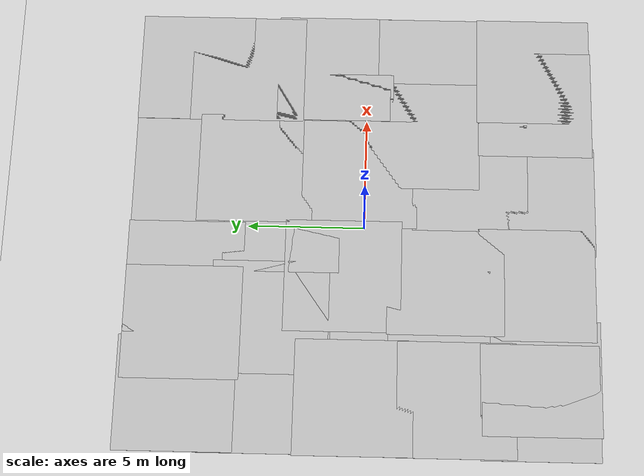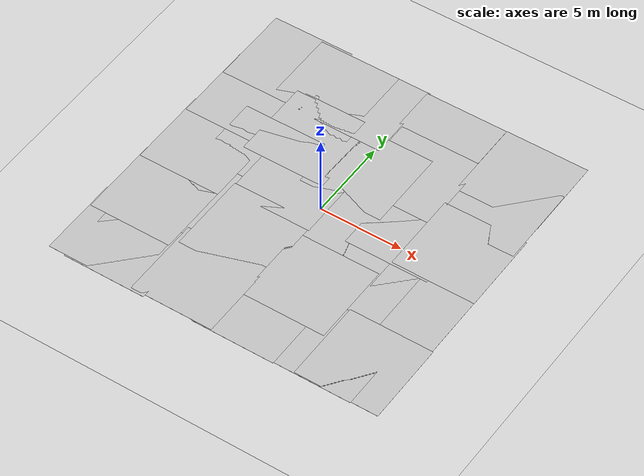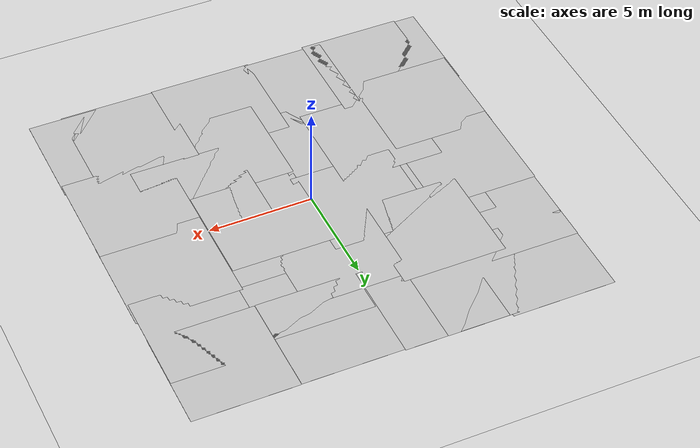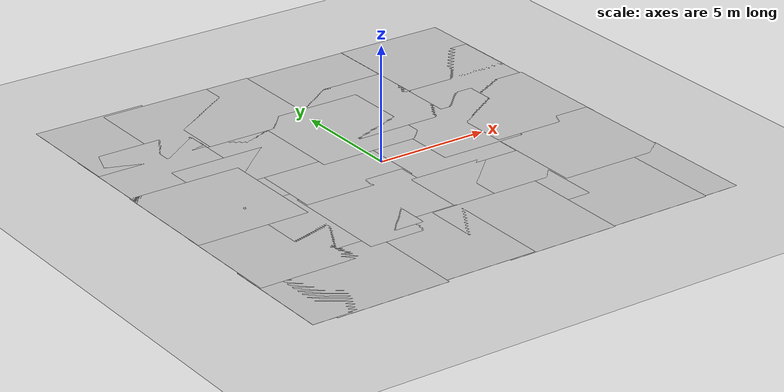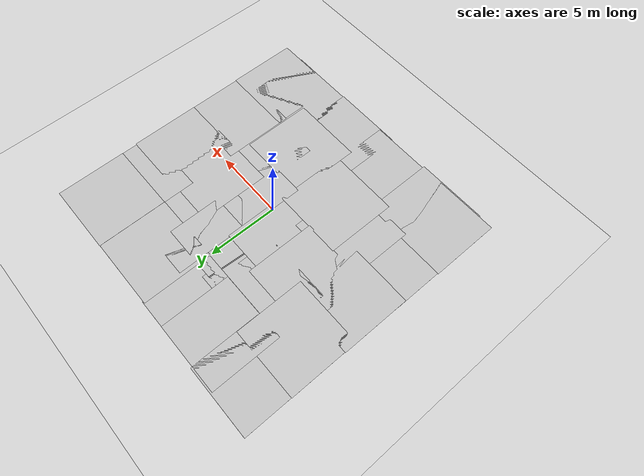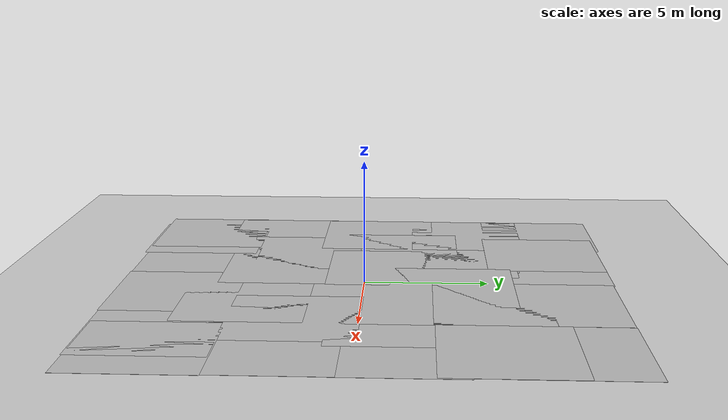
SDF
<sdf version="1.7">
 <world name="default">
  <light name="sun" type="directional">
   <pose>0 0 10 0 -0 0</pose>
   <diffuse>0.8 0.8 0.8 1</diffuse>
   <specular>0.2 0.2 0.2 1</specular>
   <attenuation>
    <range>1000</range>
    <constant>0.9</constant>
    <linear>0.01</linear>
    <quadratic>0.001</quadratic>
   </attenuation>
   <direction>-0.5 0.1 -0.9</direction>
   <spot><inner_angle>0</inner_angle><outer_angle>0</outer_angle><falloff>0</falloff></spot>
  </light>
  <model name="ground_plane">
   <static>1</static>
   <link name="link">
    <collision name="collision">
     <geometry><plane><normal>0 0 1</normal><size>100 100</size></plane></geometry>
     <surface>
      <contact><collide_bitmask>65535</collide_bitmask></contact>
      <friction><ode><mu>100</mu><mu2>50</mu2></ode></friction>
     </surface>
    </collision>
    <visual name="visual">
     <cast_shadows>0</cast_shadows>
     <geometry><plane><normal>0 0 1</normal><size>100 100</size></plane></geometry>
     <material>
      <script><uri>file://media/materials/scripts/gazebo.material</uri><name>Gazebo/Grey</name></script>
     </material>
    </visual>
   </link>
  </model>
  <gravity>0 0 -9.8</gravity>
  <magnetic_field>6e-06 2.3e-05 -4.2e-05</magnetic_field>
  <atmosphere type="adiabatic"/>
  <physics type="ode">
   <max_step_size>0.001</max_step_size>
   <real_time_factor>1</real_time_factor>
   <real_time_update_rate>1000</real_time_update_rate>
  </physics>
  <scene><ambient>0.4 0.4 0.4 1</ambient><background>0.7 0.7 0.7 1</background><shadows>1</shadows></scene>
  <spherical_coordinates>
   <surface_model>EARTH_WGS84</surface_model>
   <latitude_deg>0</latitude_deg>
   <longitude_deg>0</longitude_deg>
   <elevation>0</elevation>
   <heading_deg>0</heading_deg>
  </spherical_coordinates>
  <model name="my_ground_plane">
   <static>1</static>
   <link name="link">
    <collision name="collision">
     <geometry><plane><normal>0 0 1</normal><size>5 5</size></plane></geometry>
     <surface><friction><ode><mu>100</mu><mu2>50</mu2></ode></friction></surface>
    </collision>
    <visual name="visual">
     <cast_shadows>0</cast_shadows>
     <geometry><plane><normal>0 0 1</normal><size>5 5</size></plane></geometry>
     <material>
      <script>
       <uri>model://my_ground_plane/materials/scripts</uri>
       <uri>model://my_ground_plane/materials/textures/</uri>
       <name>MyGroundPlane/Image</name>
      </script>
     </material>
    </visual>
   </link>
   <pose>-2.1472 0.891418 0 0 -0 0</pose>
  </model>
  <model name="my_ground_plane_0">
   <static>1</static>
   <link name="link">
    <collision name="collision">
     <geometry><plane><normal>0 0 1</normal><size>5 5</size></plane></geometry>
     <surface><friction><ode><mu>100</mu><mu2>50</mu2></ode></friction></surface>
    </collision>
    <visual name="visual">
     <cast_shadows>0</cast_shadows>
     <geometry><plane><normal>0 0 1</normal><size>5 5</size></plane></geometry>
     <material>
      <script>
       <uri>model://my_ground_plane/materials/scripts</uri>
       <uri>model://my_ground_plane/materials/textures/</uri>
       <name>MyGroundPlane/Image</name>
      </script>
     </material>
    </visual>
   </link>
   <pose>2.54168 0.257078 0 0 -0 0</pose>
  </model>
  <model name="my_ground_plane_1">
   <static>1</static>
   <link name="link">
    <collision name="collision">
     <geometry><plane><normal>0 0 1</normal><size>5 5</size></plane></geometry>
     <surface><friction><ode><mu>100</mu><mu2>50</mu2></ode></friction></surface>
    </collision>
    <visual name="visual">
     <cast_shadows>0</cast_shadows>
     <geometry><plane><normal>0 0 1</normal><size>5 5</size></plane></geometry>
     <material>
      <script>
       <uri>model://my_ground_plane/materials/scripts</uri>
       <uri>model://my_ground_plane/materials/textures/</uri>
       <name>MyGroundPlane/Image</name>
      </script>
     </material>
    </visual>
   </link>
   <pose>-2.21829 -3.50663 0 0 -0 0</pose>
  </model>
  <model name="my_ground_plane_2">
   <static>1</static>
   <link name="link">
    <collision name="collision">
     <geometry><plane><normal>0 0 1</normal><size>5 5</size></plane></geometry>
     <surface><friction><ode><mu>100</mu><mu2>50</mu2></ode></friction></surface>
    </collision>
    <visual name="visual">
     <cast_shadows>0</cast_shadows>
     <geometry><plane><normal>0 0 1</normal><size>5 5</size></plane></geometry>
     <material>
      <script>
       <uri>model://my_ground_plane/materials/scripts</uri>
       <uri>model://my_ground_plane/materials/textures/</uri>
       <name>MyGroundPlane/Image</name>
      </script>
     </material>
    </visual>
   </link>
   <pose>2.48414 -4.54466 0 0 -0 0</pose>
  </model>
  <model name="my_ground_plane_3">
   <static>1</static>
   <link name="link">
    <collision name="collision">
     <geometry><plane><normal>0 0 1</normal><size>5 5</size></plane></geometry>
     <surface><friction><ode><mu>100</mu><mu2>50</mu2></ode></friction></surface>
    </collision>
    <visual name="visual">
     <cast_shadows>0</cast_shadows>
     <geometry><plane><normal>0 0 1</normal><size>5 5</size></plane></geometry>
     <material>
      <script>
       <uri>model://my_ground_plane/materials/scripts</uri>
       <uri>model://my_ground_plane/materials/textures/</uri>
       <name>MyGroundPlane/Image</name>
      </script>
     </material>
    </visual>
   </link>
   <pose>-2.4046 -7.39624 0 0 -0 0</pose>
  </model>
  <model name="my_ground_plane_4">
   <static>1</static>
   <link name="link">
    <collision name="collision">
     <geometry><plane><normal>0 0 1</normal><size>5 5</size></plane></geometry>
     <surface><friction><ode><mu>100</mu><mu2>50</mu2></ode></friction></surface>
    </collision>
    <visual name="visual">
     <cast_shadows>0</cast_shadows>
     <geometry><plane><normal>0 0 1</normal><size>5 5</size></plane></geometry>
     <material>
      <script>
       <uri>model://my_ground_plane/materials/scripts</uri>
       <uri>model://my_ground_plane/materials/textures/</uri>
       <name>MyGroundPlane/Image</name>
      </script>
     </material>
    </visual>
   </link>
   <pose>-6.5126 -7.54643 0 0 -0 0</pose>
  </model>
  <model name="my_ground_plane_5">
   <static>1</static>
   <link name="link">
    <collision name="collision">
     <geometry><plane><normal>0 0 1</normal><size>5 5</size></plane></geometry>
     <surface><friction><ode><mu>100</mu><mu2>50</mu2></ode></friction></surface>
    </collision>
    <visual name="visual">
     <cast_shadows>0</cast_shadows>
     <geometry><plane><normal>0 0 1</normal><size>5 5</size></plane></geometry>
     <material>
      <script>
       <uri>model://my_ground_plane/materials/scripts</uri>
       <uri>model://my_ground_plane/materials/textures/</uri>
       <name>MyGroundPlane/Image</name>
      </script>
     </material>
    </visual>
   </link>
   <pose>-7.54538 -7.47346 0 0 -0 0</pose>
  </model>
  <model name="my_ground_plane_6">
   <static>1</static>
   <link name="link">
    <collision name="collision">
     <geometry><plane><normal>0 0 1</normal><size>5 5</size></plane></geometry>
     <surface><friction><ode><mu>100</mu><mu2>50</mu2></ode></friction></surface>
    </collision>
    <visual name="visual">
     <cast_shadows>0</cast_shadows>
     <geometry><plane><normal>0 0 1</normal><size>5 5</size></plane></geometry>
     <material>
      <script>
       <uri>model://my_ground_plane/materials/scripts</uri>
       <uri>model://my_ground_plane/materials/textures/</uri>
       <name>MyGroundPlane/Image</name>
      </script>
     </material>
    </visual>
   </link>
   <pose>-7.49969 -3.98698 0 0 -0 0</pose>
  </model>
  <model name="my_ground_plane_7">
   <static>1</static>
   <link name="link">
    <collision name="collision">
     <geometry><plane><normal>0 0 1</normal><size>5 5</size></plane></geometry>
     <surface><friction><ode><mu>100</mu><mu2>50</mu2></ode></friction></surface>
    </collision>
    <visual name="visual">
     <cast_shadows>0</cast_shadows>
     <geometry><plane><normal>0 0 1</normal><size>5 5</size></plane></geometry>
     <material>
      <script>
       <uri>model://my_ground_plane/materials/scripts</uri>
       <uri>model://my_ground_plane/materials/textures/</uri>
       <name>MyGroundPlane/Image</name>
      </script>
     </material>
    </visual>
   </link>
   <pose>-7.48538 0.32335 0 0 -0 0</pose>
  </model>
  <model name="my_ground_plane_8">
   <static>1</static>
   <link name="link">
    <collision name="collision">
     <geometry><plane><normal>0 0 1</normal><size>5 5</size></plane></geometry>
     <surface><friction><ode><mu>100</mu><mu2>50</mu2></ode></friction></surface>
    </collision>
    <visual name="visual">
     <cast_shadows>0</cast_shadows>
     <geometry><plane><normal>0 0 1</normal><size>5 5</size></plane></geometry>
     <material>
      <script>
       <uri>model://my_ground_plane/materials/scripts</uri>
       <uri>model://my_ground_plane/materials/textures/</uri>
       <name>MyGroundPlane/Image</name>
      </script>
     </material>
    </visual>
   </link>
   <pose>-4.33085 -2.89604 0 0 -0 0</pose>
  </model>
  <model name="my_ground_plane_9">
   <static>1</static>
   <link name="link">
    <collision name="collision">
     <geometry><plane><normal>0 0 1</normal><size>5 5</size></plane></geometry>
     <surface><friction><ode><mu>100</mu><mu2>50</mu2></ode></friction></surface>
    </collision>
    <visual name="visual">
     <cast_shadows>0</cast_shadows>
     <geometry><plane><normal>0 0 1</normal><size>5 5</size></plane></geometry>
     <material>
      <script>
       <uri>model://my_ground_plane/materials/scripts</uri>
       <uri>model://my_ground_plane/materials/textures/</uri>
       <name>MyGroundPlane/Image</name>
      </script>
     </material>
    </visual>
   </link>
   <pose>-7.44478 4.40371 0 0 -0 0</pose>
  </model>
  <model name="my_ground_plane_10">
   <static>1</static>
   <link name="link">
    <collision name="collision">
     <geometry><plane><normal>0 0 1</normal><size>5 5</size></plane></geometry>
     <surface><friction><ode><mu>100</mu><mu2>50</mu2></ode></friction></surface>
    </collision>
    <visual name="visual">
     <cast_shadows>0</cast_shadows>
     <geometry><plane><normal>0 0 1</normal><size>5 5</size></plane></geometry>
     <material>
      <script>
       <uri>model://my_ground_plane/materials/scripts</uri>
       <uri>model://my_ground_plane/materials/textures/</uri>
       <name>MyGroundPlane/Image</name>
      </script>
     </material>
    </visual>
   </link>
   <pose>-4.90329 1.41965 0 0 -0 0</pose>
  </model>
  <model name="my_ground_plane_11">
   <static>1</static>
   <link name="link">
    <collision name="collision">
     <geometry><plane><normal>0 0 1</normal><size>5 5</size></plane></geometry>
     <surface><friction><ode><mu>100</mu><mu2>50</mu2></ode></friction></surface>
    </collision>
    <visual name="visual">
     <cast_shadows>0</cast_shadows>
     <geometry><plane><normal>0 0 1</normal><size>5 5</size></plane></geometry>
     <material>
      <script>
       <uri>model://my_ground_plane/materials/scripts</uri>
       <uri>model://my_ground_plane/materials/textures/</uri>
       <name>MyGroundPlane/Image</name>
      </script>
     </material>
    </visual>
   </link>
   <pose>-7.4234 7.76843 0 0 -0 0</pose>
  </model>
  <model name="my_ground_plane_12">
   <static>1</static>
   <link name="link">
    <collision name="collision">
     <geometry><plane><normal>0 0 1</normal><size>5 5</size></plane></geometry>
     <surface><friction><ode><mu>100</mu><mu2>50</mu2></ode></friction></surface>
    </collision>
    <visual name="visual">
     <cast_shadows>0</cast_shadows>
     <geometry><plane><normal>0 0 1</normal><size>5 5</size></plane></geometry>
     <material>
      <script>
       <uri>model://my_ground_plane/materials/scripts</uri>
       <uri>model://my_ground_plane/materials/textures/</uri>
       <name>MyGroundPlane/Image</name>
      </script>
     </material>
    </visual>
   </link>
   <pose>1.40929 -7.44606 0 0 -0 0</pose>
  </model>
  <model name="my_ground_plane_13">
   <static>1</static>
   <link name="link">
    <collision name="collision">
     <geometry><plane><normal>0 0 1</normal><size>5 5</size></plane></geometry>
     <surface><friction><ode><mu>100</mu><mu2>50</mu2></ode></friction></surface>
    </collision>
    <visual name="visual">
     <cast_shadows>0</cast_shadows>
     <geometry><plane><normal>0 0 1</normal><size>5 5</size></plane></geometry>
     <material>
      <script>
       <uri>model://my_ground_plane/materials/scripts</uri>
       <uri>model://my_ground_plane/materials/textures/</uri>
       <name>MyGroundPlane/Image</name>
      </script>
     </material>
    </visual>
   </link>
   <pose>6.01012 -7.39692 0 0 -0 0</pose>
  </model>
  <model name="my_ground_plane_14">
   <static>1</static>
   <link name="link">
    <collision name="collision">
     <geometry><plane><normal>0 0 1</normal><size>5 5</size></plane></geometry>
     <surface><friction><ode><mu>100</mu><mu2>50</mu2></ode></friction></surface>
    </collision>
    <visual name="visual">
     <cast_shadows>0</cast_shadows>
     <geometry><plane><normal>0 0 1</normal><size>5 5</size></plane></geometry>
     <material>
      <script>
       <uri>model://my_ground_plane/materials/scripts</uri>
       <uri>model://my_ground_plane/materials/textures/</uri>
       <name>MyGroundPlane/Image</name>
      </script>
     </material>
    </visual>
   </link>
   <pose>7.60434 -7.34728 0 0 -0 0</pose>
  </model>
  <model name="my_ground_plane_15">
   <static>1</static>
   <link name="link">
    <collision name="collision">
     <geometry><plane><normal>0 0 1</normal><size>5 5</size></plane></geometry>
     <surface><friction><ode><mu>100</mu><mu2>50</mu2></ode></friction></surface>
    </collision>
    <visual name="visual">
     <cast_shadows>0</cast_shadows>
     <geometry><plane><normal>0 0 1</normal><size>5 5</size></plane></geometry>
     <material>
      <script>
       <uri>model://my_ground_plane/materials/scripts</uri>
       <uri>model://my_ground_plane/materials/textures/</uri>
       <name>MyGroundPlane/Image</name>
      </script>
     </material>
    </visual>
   </link>
   <pose>7.5602 -2.97585 0 0 -0 0</pose>
  </model>
  <model name="my_ground_plane_16">
   <static>1</static>
   <link name="link">
    <collision name="collision">
     <geometry><plane><normal>0 0 1</normal><size>5 5</size></plane></geometry>
     <surface><friction><ode><mu>100</mu><mu2>50</mu2></ode></friction></surface>
    </collision>
    <visual name="visual">
     <cast_shadows>0</cast_shadows>
     <geometry><plane><normal>0 0 1</normal><size>5 5</size></plane></geometry>
     <material>
      <script>
       <uri>model://my_ground_plane/materials/scripts</uri>
       <uri>model://my_ground_plane/materials/textures/</uri>
       <name>MyGroundPlane/Image</name>
      </script>
     </material>
    </visual>
   </link>
   <pose>7.57411 1.48463 0 0 -0 0</pose>
  </model>
  <model name="my_ground_plane_17">
   <static>1</static>
   <link name="link">
    <collision name="collision">
     <geometry><plane><normal>0 0 1</normal><size>5 5</size></plane></geometry>
     <surface><friction><ode><mu>100</mu><mu2>50</mu2></ode></friction></surface>
    </collision>
    <visual name="visual">
     <cast_shadows>0</cast_shadows>
     <geometry><plane><normal>0 0 1</normal><size>5 5</size></plane></geometry>
     <material>
      <script>
       <uri>model://my_ground_plane/materials/scripts</uri>
       <uri>model://my_ground_plane/materials/textures/</uri>
       <name>MyGroundPlane/Image</name>
      </script>
     </material>
    </visual>
   </link>
   <pose>4.40161 -2.45021 0 0 -0 0</pose>
  </model>
  <model name="my_ground_plane_18">
   <static>1</static>
   <link name="link">
    <collision name="collision">
     <geometry><plane><normal>0 0 1</normal><size>5 5</size></plane></geometry>
     <surface><friction><ode><mu>100</mu><mu2>50</mu2></ode></friction></surface>
    </collision>
    <visual name="visual">
     <cast_shadows>0</cast_shadows>
     <geometry><plane><normal>0 0 1</normal><size>5 5</size></plane></geometry>
     <material>
      <script>
       <uri>model://my_ground_plane/materials/scripts</uri>
       <uri>model://my_ground_plane/materials/textures/</uri>
       <name>MyGroundPlane/Image</name>
      </script>
     </material>
    </visual>
   </link>
   <pose>7.49096 5.30326 0 0 -0 0</pose>
  </model>
  <model name="my_ground_plane_19">
   <static>1</static>
   <link name="link">
    <collision name="collision">
     <geometry><plane><normal>0 0 1</normal><size>5 5</size></plane></geometry>
     <surface><friction><ode><mu>100</mu><mu2>50</mu2></ode></friction></surface>
    </collision>
    <visual name="visual">
     <cast_shadows>0</cast_shadows>
     <geometry><plane><normal>0 0 1</normal><size>5 5</size></plane></geometry>
     <material>
      <script>
       <uri>model://my_ground_plane/materials/scripts</uri>
       <uri>model://my_ground_plane/materials/textures/</uri>
       <name>MyGroundPlane/Image</name>
      </script>
     </material>
    </visual>
   </link>
   <pose>4.80478 1.34883 0 0 -0 0</pose>
  </model>
  <model name="my_ground_plane_20">
   <static>1</static>
   <link name="link">
    <collision name="collision">
     <geometry><plane><normal>0 0 1</normal><size>5 5</size></plane></geometry>
     <surface><friction><ode><mu>100</mu><mu2>50</mu2></ode></friction></surface>
    </collision>
    <visual name="visual">
     <cast_shadows>0</cast_shadows>
     <geometry><plane><normal>0 0 1</normal><size>5 5</size></plane></geometry>
     <material>
      <script>
       <uri>model://my_ground_plane/materials/scripts</uri>
       <uri>model://my_ground_plane/materials/textures/</uri>
       <name>MyGroundPlane/Image</name>
      </script>
     </material>
    </visual>
   </link>
   <pose>7.51015 7.6076 0 0 -0 0</pose>
  </model>
  <model name="my_ground_plane_21">
   <static>1</static>
   <link name="link">
    <collision name="collision">
     <geometry><plane><normal>0 0 1</normal><size>5 5</size></plane></geometry>
     <surface><friction><ode><mu>100</mu><mu2>50</mu2></ode></friction></surface>
    </collision>
    <visual name="visual">
     <cast_shadows>0</cast_shadows>
     <geometry><plane><normal>0 0 1</normal><size>5 5</size></plane></geometry>
     <material>
      <script>
       <uri>model://my_ground_plane/materials/scripts</uri>
       <uri>model://my_ground_plane/materials/textures/</uri>
       <name>MyGroundPlane/Image</name>
      </script>
     </material>
    </visual>
   </link>
   <pose>2.74709 4.79068 0 0 -0 0</pose>
  </model>
  <model name="my_ground_plane_22">
   <static>1</static>
   <link name="link">
    <collision name="collision">
     <geometry><plane><normal>0 0 1</normal><size>5 5</size></plane></geometry>
     <surface><friction><ode><mu>100</mu><mu2>50</mu2></ode></friction></surface>
    </collision>
    <visual name="visual">
     <cast_shadows>0</cast_shadows>
     <geometry><plane><normal>0 0 1</normal><size>5 5</size></plane></geometry>
     <material>
      <script>
       <uri>model://my_ground_plane/materials/scripts</uri>
       <uri>model://my_ground_plane/materials/textures/</uri>
       <name>MyGroundPlane/Image</name>
      </script>
     </material>
    </visual>
   </link>
   <pose>2.50258 7.58897 0 0 -0 0</pose>
  </model>
  <model name="my_ground_plane_23">
   <static>1</static>
   <link name="link">
    <collision name="collision">
     <geometry><plane><normal>0 0 1</normal><size>5 5</size></plane></geometry>
     <surface><friction><ode><mu>100</mu><mu2>50</mu2></ode></friction></surface>
    </collision>
    <visual name="visual">
     <cast_shadows>0</cast_shadows>
     <geometry><plane><normal>0 0 1</normal><size>5 5</size></plane></geometry>
     <material>
      <script>
       <uri>model://my_ground_plane/materials/scripts</uri>
       <uri>model://my_ground_plane/materials/textures/</uri>
       <name>MyGroundPlane/Image</name>
      </script>
     </material>
    </visual>
   </link>
   <pose>-2.30917 7.6407 0 0 -0 0</pose>
  </model>
  <model name="my_ground_plane_24">
   <static>1</static>
   <link name="link">
    <collision name="collision">
     <geometry><plane><normal>0 0 1</normal><size>5 5</size></plane></geometry>
     <surface><friction><ode><mu>100</mu><mu2>50</mu2></ode></friction></surface>
    </collision>
    <visual name="visual">
     <cast_shadows>0</cast_shadows>
     <geometry><plane><normal>0 0 1</normal><size>5 5</size></plane></geometry>
     <material>
      <script>
       <uri>model://my_ground_plane/materials/scripts</uri>
       <uri>model://my_ground_plane/materials/textures/</uri>
       <name>MyGroundPlane/Image</name>
      </script>
     </material>
    </visual>
   </link>
   <pose>-4.3321 7.64887 0 0 -0 0</pose>
  </model>
  <model name="my_ground_plane_25">
   <static>1</static>
   <link name="link">
    <collision name="collision">
     <geometry><plane><normal>0 0 1</normal><size>5 5</size></plane></geometry>
     <surface><friction><ode><mu>100</mu><mu2>50</mu2></ode></friction></surface>
    </collision>
    <visual name="visual">
     <cast_shadows>0</cast_shadows>
     <geometry><plane><normal>0 0 1</normal><size>5 5</size></plane></geometry>
     <material>
      <script>
       <uri>model://my_ground_plane/materials/scripts</uri>
       <uri>model://my_ground_plane/materials/textures/</uri>
       <name>MyGroundPlane/Image</name>
      </script>
     </material>
    </visual>
   </link>
   <pose>-3.3384 3.86956 0 0 -0 0</pose>
  </model>
  <model name="my_ground_plane_26">
   <static>1</static>
   <link name="link">
    <collision name="collision">
     <geometry><plane><normal>0 0 1</normal><size>5 5</size></plane></geometry>
     <surface><friction><ode><mu>100</mu><mu2>50</mu2></ode></friction></surface>
    </collision>
    <visual name="visual">
     <cast_shadows>0</cast_shadows>
     <geometry><plane><normal>0 0 1</normal><size>5 5</size></plane></geometry>
     <material>
      <script>
       <uri>model://my_ground_plane/materials/scripts</uri>
       <uri>model://my_ground_plane/materials/textures/</uri>
       <name>MyGroundPlane/Image</name>
      </script>
     </material>
    </visual>
   </link>
   <pose>0.468108 3.57262 0 0 -0 0</pose>
  </model>
  <model name="my_ground_plane_27">
   <static>1</static>
   <link name="link">
    <collision name="collision">
     <geometry><plane><normal>0 0 1</normal><size>5 5</size></plane></geometry>
     <surface><friction><ode><mu>100</mu><mu2>50</mu2></ode></friction></surface>
    </collision>
    <visual name="visual">
     <cast_shadows>0</cast_shadows>
     <geometry><plane><normal>0 0 1</normal><size>5 5</size></plane></geometry>
     <material>
      <script>
       <uri>model://my_ground_plane/materials/scripts</uri>
       <uri>model://my_ground_plane/materials/textures/</uri>
       <name>MyGroundPlane/Image</name>
      </script>
     </material>
    </visual>
   </link>
   <pose>-4.05099 3.94375 0 0 -0 0</pose>
  </model>
 </world>
</sdf>
